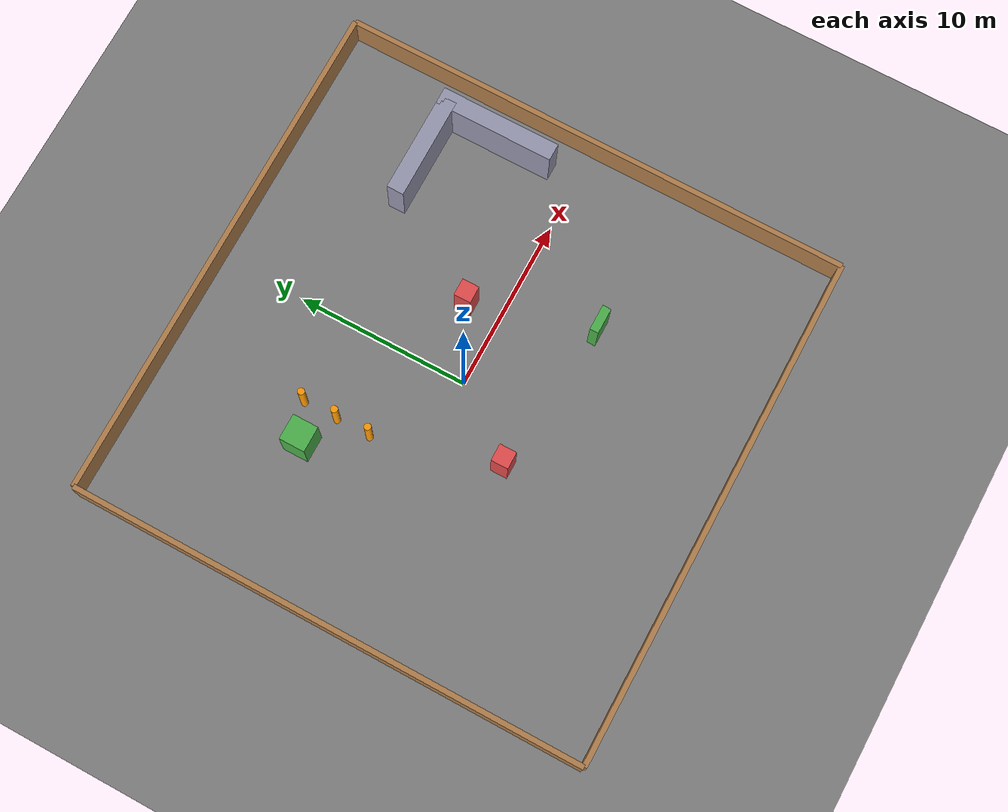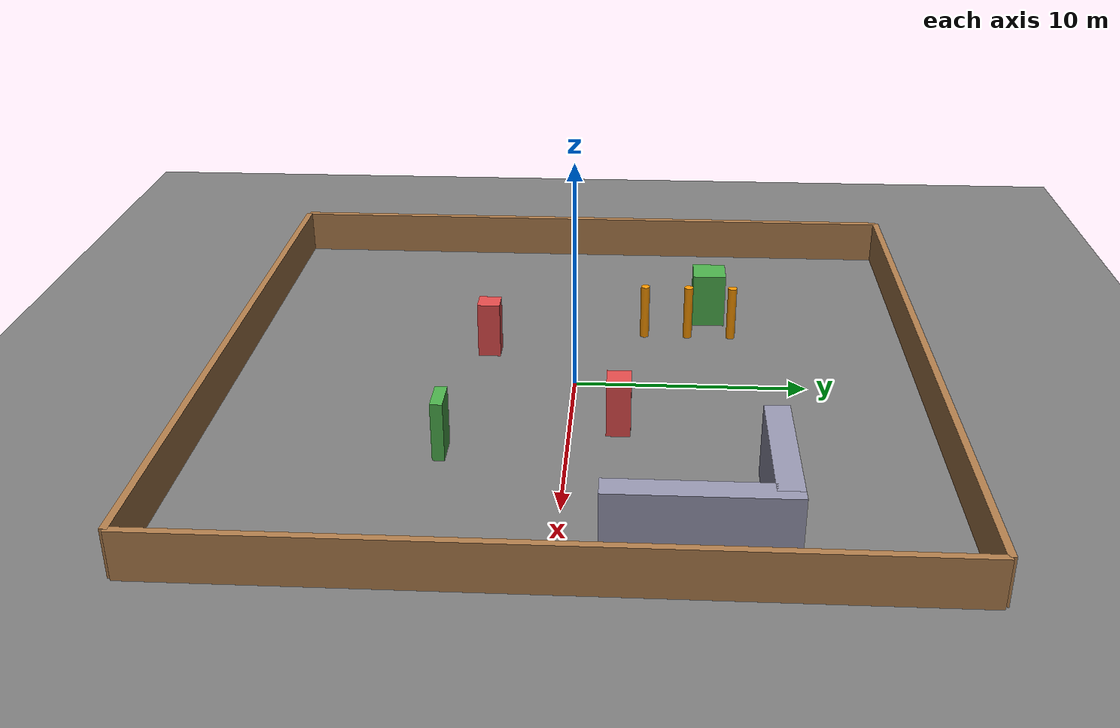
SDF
<?xml version="1.0"?>
<sdf version="1.7">
  <world name="test_yard">

    <gravity>0 0 -9.8</gravity>

    <!-- ===== 光照 ===== -->
    <include>
      <uri>model://sun</uri>
    </include>

    <!-- ===== 地面 ===== -->
    <model name="ground">
      <static>true</static>
      <link name="link">
        <collision name="collision">
          <geometry>
            <plane><normal>0 0 1</normal><size>50 50</size></plane>
          </geometry>
          <surface>
            <friction>
              <ode><mu>1.0</mu><mu2>1.0</mu2></ode>
            </friction>
          </surface>
        </collision>
        <visual name="visual">
          <geometry>
            <plane><normal>0 0 1</normal><size>50 50</size></plane>
          </geometry>
          <material>
            <ambient>0.3 0.3 0.3 1</ambient>
            <diffuse>0.5 0.5 0.5 1</diffuse>
          </material>
        </visual>
      </link>
    </model>

    <!-- ===== 围墙 ===== -->
    <model name="wall_north">
      <static>true</static>
      <pose>0 15 1 0 0 0</pose>
      <link name="link">
        <collision name="collision">
          <geometry><box><size>30 0.3 2</size></box></geometry>
        </collision>
        <visual name="visual">
          <geometry><box><size>30 0.3 2</size></box></geometry>
          <material>
            <ambient>0.6 0.4 0.2 1</ambient>
            <diffuse>0.7 0.5 0.3 1</diffuse>
          </material>
        </visual>
      </link>
    </model>

    <model name="wall_south">
      <static>true</static>
      <pose>0 -15 1 0 0 0</pose>
      <link name="link">
        <collision name="collision">
          <geometry><box><size>30 0.3 2</size></box></geometry>
        </collision>
        <visual name="visual">
          <geometry><box><size>30 0.3 2</size></box></geometry>
          <material>
            <ambient>0.6 0.4 0.2 1</ambient>
            <diffuse>0.7 0.5 0.3 1</diffuse>
          </material>
        </visual>
      </link>
    </model>

    <model name="wall_east">
      <static>true</static>
      <pose>15 0 1 0 0 1.57</pose>
      <link name="link">
        <collision name="collision">
          <geometry><box><size>30 0.3 2</size></box></geometry>
        </collision>
        <visual name="visual">
          <geometry><box><size>30 0.3 2</size></box></geometry>
          <material>
            <ambient>0.6 0.4 0.2 1</ambient>
            <diffuse>0.7 0.5 0.3 1</diffuse>
          </material>
        </visual>
      </link>
    </model>

    <model name="wall_west">
      <static>true</static>
      <pose>-15 0 1 0 0 1.57</pose>
      <link name="link">
        <collision name="collision">
          <geometry><box><size>30 0.3 2</size></box></geometry>
        </collision>
        <visual name="visual">
          <geometry><box><size>30 0.3 2</size></box></geometry>
          <material>
            <ambient>0.6 0.4 0.2 1</ambient>
            <diffuse>0.7 0.5 0.3 1</diffuse>
          </material>
        </visual>
      </link>
    </model>

    <!-- ===== 障碍物：方块 ===== -->
    <model name="box_1">
      <static>true</static>
      <pose>4 2 1.25 0 0 0</pose>
      <link name="link">
        <collision name="collision">
          <geometry><box><size>1 1 2.5</size></box></geometry>
        </collision>
        <visual name="visual">
          <geometry><box><size>1 1 2.5</size></box></geometry>
          <material>
            <ambient>0.8 0.2 0.2 1</ambient>
            <diffuse>0.9 0.3 0.3 1</diffuse>
          </material>
        </visual>
      </link>
    </model>

    <model name="box_2">
      <static>true</static>
      <pose>-3 -4 1.25 0 0 0</pose>
      <link name="link">
        <collision name="collision">
          <geometry><box><size>1 1 2.5</size></box></geometry>
        </collision>
        <visual name="visual">
          <geometry><box><size>1 1 2.5</size></box></geometry>
          <material>
            <ambient>0.8 0.2 0.2 1</ambient>
            <diffuse>0.9 0.3 0.3 1</diffuse>
          </material>
        </visual>
      </link>
    </model>

    <model name="box_3">
      <static>true</static>
      <pose>6 -5 1.25 0 0 0</pose>
      <link name="link">
        <collision name="collision">
          <geometry><box><size>1.5 0.5 2.5</size></box></geometry>
        </collision>
        <visual name="visual">
          <geometry><box><size>1.5 0.5 2.5</size></box></geometry>
          <material>
            <ambient>0.2 0.6 0.2 1</ambient>
            <diffuse>0.3 0.7 0.3 1</diffuse>
          </material>
        </visual>
      </link>
    </model>

    <model name="box_4">
      <static>true</static>
      <pose>-7 6 1.25 0 0 0</pose>
      <link name="link">
        <collision name="collision">
          <geometry><box><size>1.5 1.5 2.5</size></box></geometry>
        </collision>
        <visual name="visual">
          <geometry><box><size>1.5 1.5 2.5</size></box></geometry>
          <material>
            <ambient>0.2 0.6 0.2 1</ambient>
            <diffuse>0.3 0.7 0.3 1</diffuse>
          </material>
        </visual>
      </link>
    </model>

    <!-- ===== 障碍物：圆柱（模拟桩桶） ===== -->
    <model name="pillar_1">
      <static>true</static>
      <pose>-5 3 1.25 0 0 0</pose>
      <link name="link">
        <collision name="collision">
          <geometry><cylinder><radius>0.2</radius><length>2.5</length></cylinder></geometry>
        </collision>
        <visual name="visual">
          <geometry><cylinder><radius>0.2</radius><length>2.5</length></cylinder></geometry>
          <material>
            <ambient>1 0.5 0 1</ambient>
            <diffuse>1 0.6 0 1</diffuse>
          </material>
        </visual>
      </link>
    </model>

    <model name="pillar_2">
      <static>true</static>
      <pose>-5 5 1.25 0 0 0</pose>
      <link name="link">
        <collision name="collision">
          <geometry><cylinder><radius>0.2</radius><length>2.5</length></cylinder></geometry>
        </collision>
        <visual name="visual">
          <geometry><cylinder><radius>0.2</radius><length>2.5</length></cylinder></geometry>
          <material>
            <ambient>1 0.5 0 1</ambient>
            <diffuse>1 0.6 0 1</diffuse>
          </material>
        </visual>
      </link>
    </model>

    <model name="pillar_3">
      <static>true</static>
      <pose>-5 7 1.25 0 0 0</pose>
      <link name="link">
        <collision name="collision">
          <geometry><cylinder><radius>0.2</radius><length>2.5</length></cylinder></geometry>
        </collision>
        <visual name="visual">
          <geometry><cylinder><radius>0.2</radius><length>2.5</length></cylinder></geometry>
          <material>
            <ambient>1 0.5 0 1</ambient>
            <diffuse>1 0.6 0 1</diffuse>
          </material>
        </visual>
      </link>
    </model>

    <!-- ===== L 型建筑 ===== -->
    <model name="building_wing_a">
      <static>true</static>
      <pose>10 8 1.5 0 0 0</pose>
      <link name="link">
        <collision name="collision">
          <geometry><box><size>6 1 3</size></box></geometry>
        </collision>
        <visual name="visual">
          <geometry><box><size>6 1 3</size></box></geometry>
          <material>
            <ambient>0.5 0.5 0.6 1</ambient>
            <diffuse>0.6 0.6 0.7 1</diffuse>
          </material>
        </visual>
      </link>
    </model>

    <model name="building_wing_b">
      <static>true</static>
      <pose>13 5 1.5 0 0 0</pose>
      <link name="link">
        <collision name="collision">
          <geometry><box><size>1 7 3</size></box></geometry>
        </collision>
        <visual name="visual">
          <geometry><box><size>1 7 3</size></box></geometry>
          <material>
            <ambient>0.5 0.5 0.6 1</ambient>
            <diffuse>0.6 0.6 0.7 1</diffuse>
          </material>
        </visual>
      </link>
    </model>

  </world>
</sdf>
